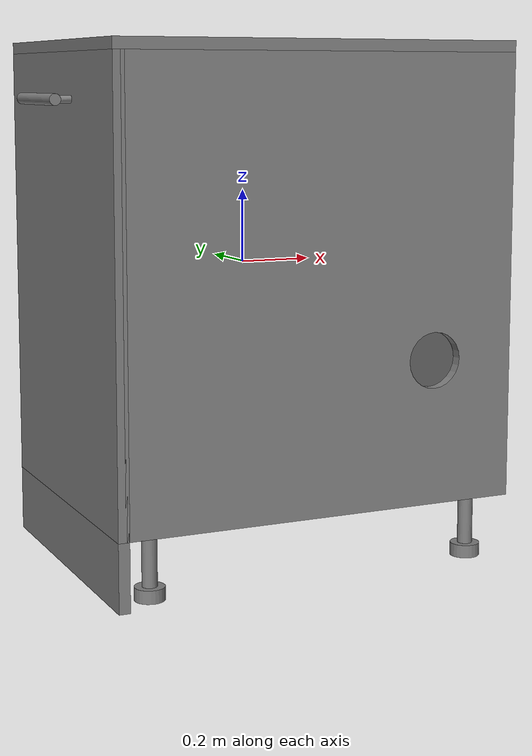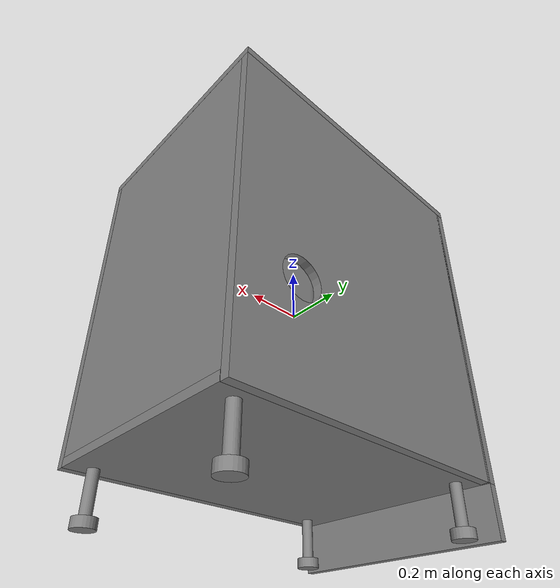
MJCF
<mujoco model="partnet_ub5271dfa-56bd-418c-9588-e94f39c12e42">
    <compiler angle="radian" />
    <size njmax="500" nconmax="100" />
    <asset>
        <mesh name="original-30" file="original-30.stl" />
        <mesh name="original-31" file="original-31.stl" />
        <mesh name="original-32" file="original-32.stl" />
        <mesh name="original-34" file="original-34.stl" />
        <mesh name="original-35" file="original-35.stl" />
        <mesh name="original-36" file="original-36.stl" />
        <mesh name="original-56" file="original-56.stl" />
        <mesh name="original-57" file="original-57.stl" />
        <mesh name="original-58" file="original-58.stl" />
        <mesh name="original-54" file="original-54.stl" />
        <mesh name="original-22" file="original-22.stl" />
        <mesh name="original-24" file="original-24.stl" />
        <mesh name="original-21" file="original-21.stl" />
        <mesh name="original-41" file="original-41.stl" />
        <mesh name="original-52" file="original-52.stl" />
        <mesh name="original-26" file="original-26.stl" />
        <mesh name="original-3" file="original-3.stl" />
        <mesh name="original-44" file="original-44.stl" />
        <mesh name="original-16" file="original-16.stl" />
        <mesh name="original-8" file="original-8.stl" />
        <mesh name="original-13" file="original-13.stl" />
        <mesh name="original-9" file="original-9.stl" />
        <mesh name="original-45" file="original-45.stl" />
        <mesh name="original-5" file="original-5.stl" />
        <mesh name="original-27" file="original-27.stl" />
        <mesh name="original-51" file="original-51.stl" />
        <mesh name="original-50" file="original-50.stl" />
        <mesh name="original-6" file="original-6.stl" />
        <mesh name="original-48" file="original-48.stl" />
        <mesh name="original-11" file="original-11.stl" />
        <mesh name="original-38" file="original-38.stl" />
        <mesh name="original-18" file="original-18.stl" />
        <mesh name="original-25" file="original-25.stl" />
        <mesh name="original-17" file="original-17.stl" />
        <mesh name="original-12" file="original-12.stl" />
        <mesh name="original-42" file="original-42.stl" />
        <mesh name="original-20" file="original-20.stl" />
        <mesh name="original-47" file="original-47.stl" />
        <mesh name="original-14" file="original-14.stl" />
    </asset>
    <worldbody>
    <body>
        <body name="object">
        <geom quat="0.5 0.5 -0.5 -0.5" type="mesh" group="0" mesh="original-21" conaffinity="0" contype="0"/>
        <geom quat="0.5 0.5 -0.5 -0.5" type="mesh" group="0" mesh="original-41" conaffinity="0" contype="0"/>
        <geom quat="0.5 0.5 -0.5 -0.5" type="mesh" group="0" mesh="original-52" conaffinity="0" contype="0"/>
        <geom quat="0.5 0.5 -0.5 -0.5" type="mesh" group="0" mesh="original-26" conaffinity="0" contype="0"/>
        <geom quat="0.5 0.5 -0.5 -0.5" type="mesh" group="0" mesh="original-3" conaffinity="0" contype="0"/>
        <geom quat="0.5 0.5 -0.5 -0.5" type="mesh" group="0" mesh="original-44" conaffinity="0" contype="0"/>
        <geom quat="0.5 0.5 -0.5 -0.5" type="mesh" group="0" mesh="original-16" conaffinity="0" contype="0"/>
        <geom quat="0.5 0.5 -0.5 -0.5" type="mesh" group="0" mesh="original-8" conaffinity="0" contype="0"/>
        <geom quat="0.5 0.5 -0.5 -0.5" type="mesh" group="0" mesh="original-13" conaffinity="0" contype="0"/>
        <geom quat="0.5 0.5 -0.5 -0.5" type="mesh" group="0" mesh="original-9" conaffinity="0" contype="0"/>
        <geom quat="0.5 0.5 -0.5 -0.5" type="mesh" group="0" mesh="original-45" conaffinity="0" contype="0"/>
        <geom quat="0.5 0.5 -0.5 -0.5" type="mesh" group="0" mesh="original-5" conaffinity="0" contype="0"/>
        <geom quat="0.5 0.5 -0.5 -0.5" type="mesh" group="0" mesh="original-27" conaffinity="0" contype="0"/>
        <geom quat="0.5 0.5 -0.5 -0.5" type="mesh" group="0" mesh="original-51" conaffinity="0" contype="0"/>
        <geom quat="0.5 0.5 -0.5 -0.5" type="mesh" group="0" mesh="original-50" conaffinity="0" contype="0"/>
        <geom quat="0.5 0.5 -0.5 -0.5" type="mesh" group="0" mesh="original-6" conaffinity="0" contype="0"/>
        <geom quat="0.5 0.5 -0.5 -0.5" type="mesh" group="0" mesh="original-48" conaffinity="0" contype="0"/>
        <geom quat="0.5 0.5 -0.5 -0.5" type="mesh" group="0" mesh="original-11" conaffinity="0" contype="0"/>
        <geom quat="0.5 0.5 -0.5 -0.5" type="mesh" group="0" mesh="original-38" conaffinity="0" contype="0"/>
        <geom quat="0.5 0.5 -0.5 -0.5" type="mesh" group="0" mesh="original-18" conaffinity="0" contype="0"/>
        <geom quat="0.5 0.5 -0.5 -0.5" type="mesh" group="0" mesh="original-25" conaffinity="0" contype="0"/>
        <geom quat="0.5 0.5 -0.5 -0.5" type="mesh" group="0" mesh="original-17" conaffinity="0" contype="0"/>
        <geom quat="0.5 0.5 -0.5 -0.5" type="mesh" group="0" mesh="original-12" conaffinity="0" contype="0"/>
        <geom quat="0.5 0.5 -0.5 -0.5" type="mesh" group="0" mesh="original-42" conaffinity="0" contype="0"/>
        <geom quat="0.5 0.5 -0.5 -0.5" type="mesh" group="0" mesh="original-20" conaffinity="0" contype="0"/>
        <geom quat="0.5 0.5 -0.5 -0.5" type="mesh" group="0" mesh="original-47" conaffinity="0" contype="0"/>
        <geom quat="0.5 0.5 -0.5 -0.5" type="mesh" group="0" mesh="original-14" conaffinity="0" contype="0"/>
        <body name="link_0" pos="-0.530105 -0.0472994 0.107966" quat="0.5 0.5 -0.5 -0.5">
            <inertial pos="-0.0237799 -0.0605602 -0.45003" quat="0.998656 0.0516329 -0.00350804 0.00263484" mass="304.365" diaginertia="31.1454 28.4214 18.3932" />
            <joint name="joint_0" pos="0 0 0" axis="0 0 1" type="slide" limited="true" range="0 1" />
            <geom pos="-0.0472994 -0.107966 -0.530105" type="mesh" group="0" mesh="original-30" />
            <geom pos="-0.0472994 -0.107966 -0.530105" type="mesh" group="0" mesh="original-31" />
            <geom pos="-0.0472994 -0.107966 -0.530105" type="mesh" group="0" mesh="original-32" />
            <geom pos="-0.0472994 -0.107966 -0.530105" type="mesh" group="0" mesh="original-34" />
            <geom pos="-0.0472994 -0.107966 -0.530105" type="mesh" group="0" mesh="original-35" />
            <geom pos="-0.0472994 -0.107966 -0.530105" type="mesh" group="0" mesh="original-36" />
            <geom pos="-0.0472994 -0.107966 -0.530105" type="mesh" group="0" mesh="original-56" />
            <geom pos="-0.0472994 -0.107966 -0.530105" type="mesh" group="0" mesh="original-57" />
            <geom pos="-0.0472994 -0.107966 -0.530105" type="mesh" group="0" mesh="original-58" />
            <geom pos="-0.0472994 -0.107966 -0.530105" type="mesh" group="0" mesh="original-54" />
            <geom pos="-0.0472994 -0.107966 -0.530105" type="mesh" group="0" mesh="original-22" />
            <geom pos="-0.0472994 -0.107966 -0.530105" type="mesh" group="0" mesh="original-24" />
        </body>
    </body>
        <site name="bottom_site" pos="0 0 -0.3" rgba="0 0 0 0" size="0.005"/>
        <site name="top_site" pos="0 0 0.3" rgba="0 0 0 0" size="0.005"/>
        <site name="horizontal_radius_site" pos="0.3 0 0" rgba="0 0 0 0" size="0.1"/>
    </body>
    </worldbody>

</mujoco>
